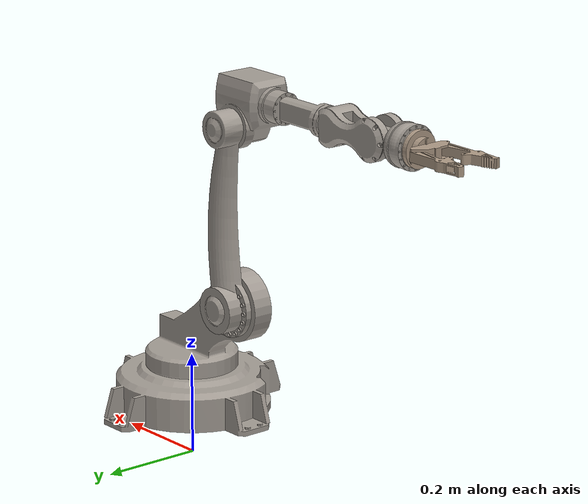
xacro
<?xml version="1.0"?>

<robot xmlns:xacro="http://www.ros.org/wiki/xacro" name="solid_robot">

    <xacro:include filename="$(find solid_robot)/urdf/solid_robot_gazebo.xacro"/>
    <xacro:include filename="$(find solid_robot)/urdf/solid_robot_control.xacro"/>

    <xacro:macro name="default_transmission" params="transmission_name actuator_name joint_name">
        <transmission name="${transmission_name}">
            <plugin>transmission_interface/SimpleTransmission</plugin>
            <actuator name="${actuator_name}" role="actuator1"/>
            <joint name="${joint_name}">
                <mechanical_reduction>
                    1.0
                </mechanical_reduction>
            </joint>
        </transmission>
    </xacro:macro>

    <link name="world" />

    <link name="base_link">
        <inertial>
        <origin
            xyz="0.18172 0.1545 0.30453"
            rpy="0 0 0" />
        <mass
            value="5.7704" />
        <inertia
            ixx="0.036457"
            ixy="-4.1169E-05"
            ixz="-0.00079967"
            iyy="0.066562"
            iyz="4.1169E-05"
            izz="0.036457" />
        </inertial>
        <visual>
        <origin
            xyz="-0.18524 0.3065 -0.12"
            rpy="0 0 0" />
        <geometry>
            <mesh
            filename="file://$(find solid_robot)/meshes/base_link.STL" />
        </geometry>
        <material
            name="">
            <color
            rgba="0.64706 0.61961 0.58824 1" />
        </material>
        </visual>
        <collision>
        <origin
            xyz="-0.18524 0.3065 -0.12"
            rpy="0 0 0" />
        <geometry>
            <mesh
            filename="package://solid_robot/meshes/base_link.STL" />
        </geometry>
        </collision>
    </link>
    <joint
        name="virtual_joint" type="fixed">
        <parent link="world" />
        <child link="base_link"/>
        <origin rpy="0 0 0" xyz="0 0 0.1" />
    </joint>

    <link name="link1">
        <inertial>
        <origin
            xyz="-0.057021 0.082656 0.0027568"
            rpy="0 0 0" />
        <mass
            value="2.2995" />
        <inertia
            ixx="0.011863"
            ixy="0.0090546"
            ixz="0.00047155"
            iyy="0.016197"
            iyz="-0.00041249"
            izz="0.02368" />
        </inertial>
        <visual>
        <origin
            xyz="0 0 0"
            rpy="0 0 0" />
        <geometry>
            <mesh
            filename="package://solid_robot/meshes/link1.STL" />
        </geometry>
        <material
            name="">
            <color
            rgba="0.64706 0.61961 0.58824 1" />
        </material>
        </visual>
        <collision>
        <origin
            xyz="0 0 0"
            rpy="0 0 0" />
        <geometry>
            <mesh
            filename="package://solid_robot/meshes/link1.STL" />
        </geometry>
        </collision>
    </link>
    <joint
        name="joint1"
        type="revolute">
        <origin
        xyz="0.0 0.0 0.08"
        rpy="1.5708 0 0" />
        <parent
        link="base_link" />
        <child
        link="link1" />
        <axis
        xyz="0 1 0" />
        <limit
        lower="0"
        upper="${2 * pi}"
        effort="300"
        velocity="3" />
    </joint>

    <link name="link2">
        <inertial>
        <origin
            xyz="-0.1401 0.035314 0.0081147"
            rpy="0 0 0" />
        <mass
            value="0.91534" />
        <inertia
            ixx="0.00061089"
            ixy="-7.9016E-05"
            ixz="0.00017363"
            iyy="0.017868"
            iyz="3.1115E-05"
            izz="0.017534" />
        </inertial>
        <visual>
        <origin
            xyz="0 0 0"
            rpy="0 0 0" />
        <geometry>
            <mesh
            filename="package://solid_robot/meshes/link2.STL" />
        </geometry>
        <material
            name="">
            <color
            rgba="0.64706 0.61961 0.58824 1" />
        </material>
        </visual>
        <collision>
        <origin
            xyz="0 0 0"
            rpy="0 0 0" />
        <geometry>
            <mesh
            filename="package://solid_robot/meshes/link2.STL" />
        </geometry>
        </collision>
    </link>
    <joint
        name="joint2"
        type="revolute">
        <origin
        xyz="-0.15 0.16 0"
        rpy="-1.5708 0 -1.5708" />
        <parent
        link="link1" />
        <child
        link="link2" />
        <axis
        xyz="0 1 0" />
        <limit
        lower="0"
        upper="${2*pi}"
        effort="300"
        velocity="3" />
    </joint>

    <link name="link3">
        <inertial>
        <origin
            xyz="0.034483 0.038537 -0.02616"
            rpy="0 0 0" />
        <mass
            value="1.2927" />
        <inertia
            ixx="0.001766"
            ixy="-0.00029864"
            ixz="8.1954E-05"
            iyy="0.0062721"
            iyz="0.00012362"
            izz="0.0066616" />
        </inertial>
        <visual>
        <origin
            xyz="0 0 0"
            rpy="0 0 0" />
        <geometry>
            <mesh
            filename="package://solid_robot/meshes/link3.STL" />
        </geometry>
        <material
            name="">
            <color
            rgba="0.64706 0.61961 0.58824 1" />
        </material>
        </visual>
        <collision>
        <origin
            xyz="0 0 0"
            rpy="0 0 0" />
        <geometry>
            <mesh
            filename="package://solid_robot/meshes/link3.STL" />
        </geometry>
        </collision>
    </link>
    <joint
        name="joint3"
        type="revolute">
        <origin
        xyz="-0.35 0 0"
        rpy="-1.5708 1.5708 0" />
        <parent
        link="link2" />
        <child
        link="link3" />
        <axis
        xyz="0 0 1" />
        <limit
        lower="0"
        upper="${2 * pi}"
        effort="300"
        velocity="3" />
    </joint>

    <link name="link4">
        <inertial>
        <origin
            xyz="0.00091373 0 0"
            rpy="0 0 0" />
        <mass
            value="0.54197" />
        <inertia
            ixx="0.00044974"
            ixy="-6.8942E-19"
            ixz="-2.0735E-18"
            iyy="0.0018769"
            iyz="-1.3623E-11"
            izz="0.0017776" />
        </inertial>
        <visual>
        <origin
            xyz="0 0 0"
            rpy="0 0 0" />
        <geometry>
            <mesh
            filename="package://solid_robot/meshes/link4.STL" />
        </geometry>
        <material
            name="">
            <color
            rgba="0.64706 0.61961 0.58824 1" />
        </material>
        </visual>
        <collision>
        <origin
            xyz="0 0 0"
            rpy="0 0 0" />
        <geometry>
            <mesh
            filename="package://solid_robot/meshes/link4.STL" />
        </geometry>
        </collision>
    </link>
    <joint
        name="joint4"
        type="revolute">
        <origin
        xyz="0.3 0.045 -0.028"
        rpy="3.1416 0 3.1416" />
        <parent
        link="link3" />
        <child
        link="link4" />
        <axis
        xyz="-1 0 0" />
        <limit
        lower="0"
        upper="${2 * pi}"
        effort="300"
        velocity="3" />
    </joint>

    <link name="link5">
        <inertial>
        <origin
            xyz="-0.0026499 -1.1102E-16 0.060072"
            rpy="0 0 0" />
        <mass
            value="0.31443" />
        <inertia
            ixx="0.00031794"
            ixy="2.124E-21"
            ixz="-2.8308E-06"
            iyy="0.00031439"
            iyz="-2.0731E-20"
            izz="0.0002211" />
        </inertial>
        <visual>
        <origin
            xyz="0 0 0"
            rpy="0 0 0" />
        <geometry>
            <mesh
            filename="package://solid_robot/meshes/link5.STL" />
        </geometry>
        <material
            name="">
            <color
            rgba="0.64706 0.61961 0.58824 1" />
        </material>
        </visual>
        <collision>
        <origin
            xyz="0 0 0"
            rpy="0 0 0" />
        <geometry>
            <mesh
            filename="package://solid_robot/meshes/link5.STL" />
        </geometry>
        </collision>
    </link>
    <joint
        name="joint5"
        type="revolute">
        <origin
        xyz="-0.059 0 0"
        rpy="3.1416 1.5708 0" />
        <parent
        link="link4" />
        <child
        link="link5" />
        <axis
        xyz="1 0 0" />
        <limit
        lower="-2.0"
        upper="2.0"
        effort="300"
        velocity="3" />
    </joint>

    <link name="gripper_link">
        <inertial>
        <origin
            xyz="-0.011432 1.1102E-16 0"
            rpy="0 0 0" />
        <mass
            value="0.076424" />
        <inertia
            ixx="4.0169E-05"
            ixy="-2.0742E-21"
            ixz="5.0822E-21"
            iyy="3.8067E-05"
            iyz="-6.5802E-22"
            izz="3.2004E-05" />
        </inertial>
        <visual>
        <origin
            xyz="0 0 0"
            rpy="0 0 0" />
        <geometry>
            <mesh
            filename="package://solid_robot/meshes/gripper_link.STL" />
        </geometry>
        <material
            name="">
            <color
            rgba="0.68627 0.60784 0.52941 1" />
        </material>
        </visual>
        <collision>
        <origin
            xyz="0 0 0"
            rpy="0 0 0" />
        <geometry>
            <mesh
            filename="package://solid_robot/meshes/gripper_link.STL" />
        </geometry>
        </collision>
    </link>
    <joint
        name="gripper_joint"
        type="revolute">
        <origin
        xyz="-0.0025 0 0.12172"
        rpy="0 -1.5708 0" />
        <parent
        link="link5" />
        <child
        link="gripper_link" />
        <axis
        xyz="1 0 0" />
        <limit
        lower="0"
        upper="${2 * pi}"
        effort="300"
        velocity="3" />
    </joint>

    <link name="left_claw_link">
        <inertial>
        <origin
            xyz="0.0086601 -0.052114 -0.021114"
            rpy="0 0 0" />
        <mass
            value="0.040444" />
        <inertia
            ixx="5.2363E-05"
            ixy="-1.0979E-20"
            ixz="-4.5609E-21"
            iyy="7.3767E-06"
            iyz="-1.2737E-05"
            izz="4.7131E-05" />
        </inertial>
        <visual>
        <origin
            xyz="-0.009 0 0"
            rpy="0 0 0" />
        <geometry>
            <mesh
            filename="package://solid_robot/meshes/left_claw_link.STL" />
        </geometry>
        <material
            name="">
            <color
            rgba="0.6902 0.61176 0.52941 1" />
        </material>
        </visual>
        <collision>
        <origin
            xyz="0 0 0"
            rpy="0 0 0" />
        <geometry>
            <mesh
            filename="package://solid_robot/meshes/left_claw_link.STL" />
        </geometry>
        </collision>
    </link>
    <joint
        name="left_claw_joint"
        type="revolute">
        <origin
        xyz="0.0051752 0 -0.04081"
        rpy="2.8401 0 -1.5708" />
        <parent
        link="gripper_link" />
        <child
        link="left_claw_link" />
        <axis
        xyz="1 0 0" />
        <limit
        lower="-${pi/2}"
        upper="0.2"
        effort="300"
        velocity="3" />
    </joint>

    <link name="right_claw_link">
        <inertial>
        <origin
            xyz="-1.1102E-16 -0.052114 -0.021114"
            rpy="0 0 0" />
        <mass
            value="0.040444" />
        <inertia
            ixx="5.2363E-05"
            ixy="-1.1288E-20"
            ixz="-4.7622E-21"
            iyy="7.3767E-06"
            iyz="-1.2737E-05"
            izz="4.7131E-05" />
        </inertial>
        <visual>
        <origin
            xyz="0 0 0"
            rpy="0 0 0" />
        <geometry>
            <mesh
            filename="package://solid_robot/meshes/right_claw_link.STL" />
        </geometry>
        <material
            name="">
            <color
            rgba="0.6902 0.61176 0.52941 1" />
        </material>
        </visual>
        <collision>
        <origin
            xyz="0 0 0"
            rpy="0 0 0" />
        <geometry>
            <mesh
            filename="package://solid_robot/meshes/right_claw_link.STL" />
        </geometry>
        </collision>
    </link>
    <joint
        name="right_claw_joint"
        type="revolute">
        <origin
        xyz="0.0051752 0 0.04081"
        rpy="-0.30147 0 1.5708" />
        <parent
        link="gripper_link" />
        <child
        link="right_claw_link" />
        <axis
        xyz="-1 0 0" />
        <limit
        lower="-0.2"
        upper="${pi/2}"
        effort="300"
        velocity="3" />
    </joint>

    <xacro:default_transmission transmission_name="link1_transmission" actuator_name="motor1" joint_name="joint1"/>
    <xacro:default_transmission transmission_name="link2_transmission" actuator_name="motor2" joint_name="joint2"/>
    <xacro:default_transmission transmission_name="link3_transmission" actuator_name="motor3" joint_name="joint3"/>
    <xacro:default_transmission transmission_name="link4_transmission" actuator_name="motor4" joint_name="joint4"/>
    <xacro:default_transmission transmission_name="link5_transmission" actuator_name="motor5" joint_name="joint5"/>
    <xacro:default_transmission transmission_name="gripper_link_transmission" actuator_name="gripper_motor" joint_name="gripper_joint"/>
    <xacro:default_transmission transmission_name="left_claw_link_transmission" actuator_name="left_claw_motor" joint_name="left_claw_joint"/>
    <xacro:default_transmission transmission_name="right_claw_link_transmission" actuator_name="right_claw_motor" joint_name="right_claw_joint"/>

</robot>
